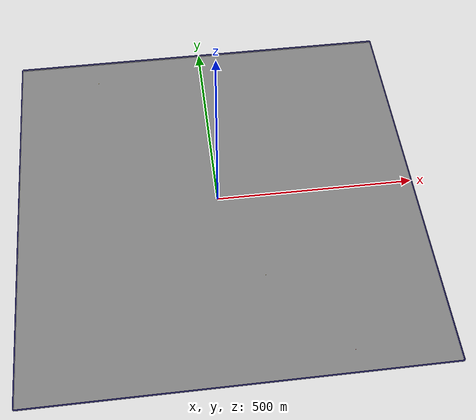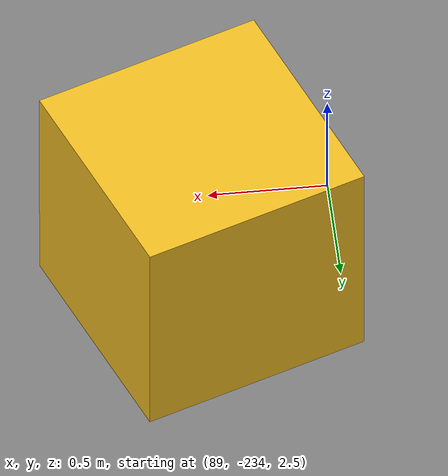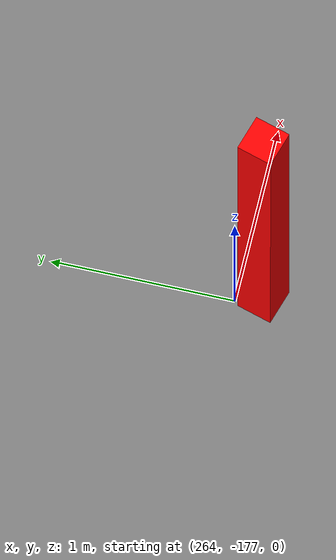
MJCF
<mujoco model="unnamed_model">
  <default>
    <default class="/" />
    <default class="border/" />
    <default class="border_1/" />
    <default class="border_2/" />
    <default class="border_3/" />
    <default class="agentplaceholder/" />
    <default class="placeholder_box/" />
    <default class="stone0/" />
    <default class="stone1/" />
    <default class="tree/" />
    <default class="tree_1/" />
  </default>
  <worldbody>
    <body name="border/">
      <body name="border/border" pos="0 501 2">
        <geom name="border/border_geom" class="border/" type="box" size="500 1 2" rgba="0.035000000000000003 0.016 0.28999999999999998 1" />
      </body>
    </body>
    <body name="border_1/">
      <body name="border_1/border" pos="0 -501 2">
        <geom name="border_1/border_geom" class="border_1/" type="box" size="500 1 2" rgba="0.035000000000000003 0.016 0.28999999999999998 1" />
      </body>
    </body>
    <body name="border_2/">
      <body name="border_2/border" pos="501 0 2">
        <geom name="border_2/border_geom" class="border_2/" type="box" size="1 500 2" rgba="0.035000000000000003 0.016 0.28999999999999998 1" />
      </body>
    </body>
    <body name="border_3/">
      <body name="border_3/border" pos="-501 0 2">
        <geom name="border_3/border_geom" class="border_3/" type="box" size="1 500 2" rgba="0.035000000000000003 0.016 0.28999999999999998 1" />
      </body>
    </body>
    <body euler="0 0 110.9998933533663" name="agentplaceholder/">
      <joint name="agentplaceholder/boxagent_freeJoint/" class="/" type="free" />
      <body name="agentplaceholder/agentplaceholder" pos="-250 0 3" euler="0 0 0">
        <geom name="agentplaceholder/boxagent_geom" class="agentplaceholder/" type="box" size="0.5 0.5 0.5" rgba="0.94899999999999995 0.74509999999999998 0.1333 1" euler="0 0 0" />
      </body>
    </body>
    <body name="placeholder_box/">
      <body name="placeholder_box/placeholder_box" pos="-288.47185000000002 426.37740000000008 0.5" euler="0 0 146.29986903366097">
        <geom name="placeholder_box/box_geom" class="placeholder_box/" type="box" size="0.5 0.5 0.5" rgba="0.94899999999999995 0.74509999999999998 0.1333 1" euler="0 0 0" />
      </body>
    </body>
    <body name="stone0/">
      <body name="stone0/stone0" pos="337.74709999999999 100.07749999999999 0.10000000000000001" euler="0 0 -109.4380593754619">
        <geom name="stone0/stone_geom" class="stone0/" type="box" size="0.10000000000000001 0.10000000000000001 2" rgba="1 0 0 1" />
      </body>
    </body>
    <body name="stone1/">
      <body name="stone1/stone1" pos="264.0487 -177.14179999999999 0.10000000000000001" euler="0 0 163.37178617101961">
        <geom name="stone1/stone_geom" class="stone1/" type="box" size="0.10000000000000001 0.10000000000000001 2" rgba="1 0 0 1" />
      </body>
    </body>
    <body name="tree/">
      <body name="tree/tree" pos="263.6182 -446.4871 0.10000000000000001" euler="0 0 18.319086818942424">
        <geom name="tree/tree_geom" class="tree/" type="box" size="0.10000000000000001 0.10000000000000001 2" rgba="1 0 0 1" />
      </body>
    </body>
    <body name="tree_1/">
      <body name="tree_1/tree" pos="334.88594999999998 -6.1021000000000072 0.10000000000000001" euler="0 0 -47.568447864167069">
        <geom name="tree_1/tree_geom" class="tree_1/" type="box" size="0.10000000000000001 0.10000000000000001 2" rgba="1 0 0 1" />
      </body>
    </body>
    <geom name="base_plane" class="/" type="plane" size="500 500 0.10000000000000001" />
  </worldbody>
</mujoco>
